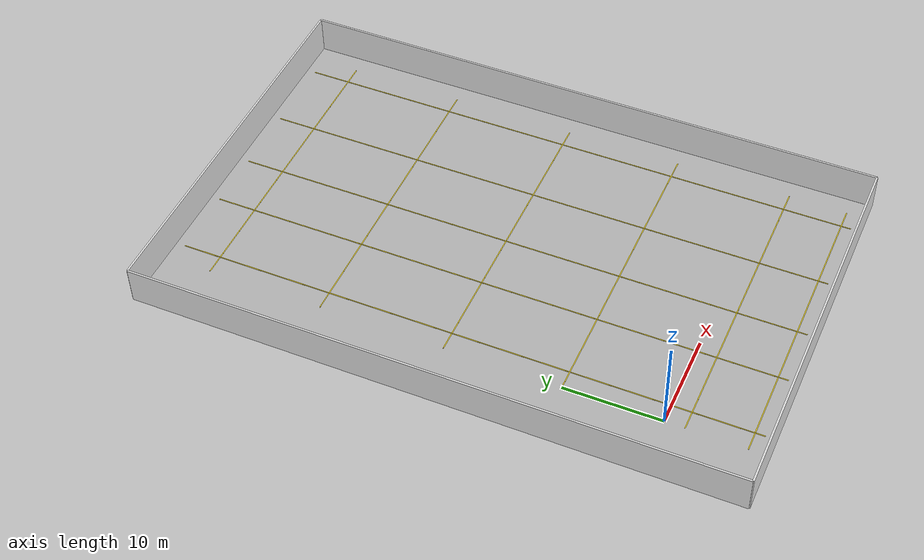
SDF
<sdf version="1.10">
 <world name="warehouse_with_people">
  <plugin name="gz::sim::systems::Physics" filename="gz-sim-physics-system"/>
  <plugin name="gz::sim::systems::UserCommands" filename="gz-sim-user-commands-system"/>
  <plugin name="gz::sim::systems::SceneBroadcaster" filename="gz-sim-scene-broadcaster-system"/>
  <plugin name="gz::sim::systems::Sensors" filename="gz-sim-sensors-system">
   <render_engine>ogre2</render_engine>
  </plugin>
  <gravity>0 0 -9.8000000000000007</gravity>
  <physics name="default_physics" default="false" type="ode">
   <max_step_size>0.001</max_step_size>
   <real_time_factor>1</real_time_factor>
   <real_time_update_rate>1000</real_time_update_rate>
  </physics>
  <magnetic_field>6.0000000000000002e-06 2.3e-05 -4.1999999999999998e-05</magnetic_field>
  <atmosphere type="adiabatic"/>
  <scene>
   <ambient>0.550000012 0.550000012 0.550000012 1</ambient>
   <background>0.850000024 0.850000024 0.850000024 1</background>
   <shadows>false</shadows>
  </scene>
  <audio><device>default</device></audio>
  <spherical_coordinates>
   <surface_model>EARTH_WGS84</surface_model>
   <latitude_deg>0</latitude_deg>
   <longitude_deg>0</longitude_deg>
   <elevation>0</elevation>
   <heading_deg>0</heading_deg>
  </spherical_coordinates>
  <model name="depot_support_floor">
   <static>true</static>
   <pose>6 -11 -0.05 0 0 0</pose>
   <link name="link">
    <collision name="collision">
     <geometry><box><size>8 6 0.1</size></box></geometry>
     <surface><friction><ode><mu>1</mu><mu2>1</mu2></ode></friction></surface>
    </collision>
   </link>
  </model>
  <model name="plain_floor">
   <static>true</static>
   <pose>14 21 -0.050000000000000003 0 0 0</pose>
   <link name="link">
    <collision name="collision">
     <geometry><box><size>40 62 0.10000000000000001</size></box></geometry>
     <surface><friction><ode><mu>1</mu><mu2>1</mu2></ode></friction></surface>
    </collision>
    <visual name="visual">
     <geometry><box><size>40 62 0.10000000000000001</size></box></geometry>
     <material>
      <ambient>0.720000029 0.720000029 0.720000029 1</ambient>
      <diffuse>0.720000029 0.720000029 0.720000029 1</diffuse>
      <specular>0.0500000007 0.0500000007 0.0500000007 1</specular>
     </material>
    </visual>
    <inertial>
     <mass>1</mass>
     <inertia><ixx>1</ixx><ixy>0</ixy><ixz>0</ixz><iyy>1</iyy><iyz>0</iyz><izz>1</izz></inertia>
    </inertial>
   </link>
  </model>
  <model name="wall_west">
   <static>true</static>
   <pose>-6 21 2 0 0 0</pose>
   <link name="link">
    <collision name="collision">
     <geometry><box><size>0.20000000000000001 62 4</size></box></geometry>
     <surface><friction><ode><mu>1</mu><mu2>1</mu2></ode></friction></surface>
    </collision>
    <visual name="visual">
     <geometry><box><size>0.20000000000000001 62 4</size></box></geometry>
     <material>
      <ambient>0.879999995 0.879999995 0.879999995 1</ambient>
      <diffuse>0.879999995 0.879999995 0.879999995 1</diffuse>
      <specular>0.0500000007 0.0500000007 0.0500000007 1</specular>
     </material>
    </visual>
    <inertial>
     <mass>1</mass>
     <inertia><ixx>1</ixx><ixy>0</ixy><ixz>0</ixz><iyy>1</iyy><iyz>0</iyz><izz>1</izz></inertia>
    </inertial>
   </link>
  </model>
  <model name="wall_east">
   <static>true</static>
   <pose>34 21 2 0 0 0</pose>
   <link name="link">
    <collision name="collision">
     <geometry><box><size>0.20000000000000001 62 4</size></box></geometry>
     <surface><friction><ode><mu>1</mu><mu2>1</mu2></ode></friction></surface>
    </collision>
    <visual name="visual">
     <geometry><box><size>0.20000000000000001 62 4</size></box></geometry>
     <material>
      <ambient>0.879999995 0.879999995 0.879999995 1</ambient>
      <diffuse>0.879999995 0.879999995 0.879999995 1</diffuse>
      <specular>0.0500000007 0.0500000007 0.0500000007 1</specular>
     </material>
    </visual>
    <inertial>
     <mass>1</mass>
     <inertia><ixx>1</ixx><ixy>0</ixy><ixz>0</ixz><iyy>1</iyy><iyz>0</iyz><izz>1</izz></inertia>
    </inertial>
   </link>
  </model>
  <model name="wall_south">
   <static>true</static>
   <pose>14 -10 2 0 0 0</pose>
   <link name="link">
    <collision name="collision">
     <geometry><box><size>40 0.20000000000000001 4</size></box></geometry>
     <surface><friction><ode><mu>1</mu><mu2>1</mu2></ode></friction></surface>
    </collision>
    <visual name="visual">
     <geometry><box><size>40 0.20000000000000001 4</size></box></geometry>
     <material>
      <ambient>0.879999995 0.879999995 0.879999995 1</ambient>
      <diffuse>0.879999995 0.879999995 0.879999995 1</diffuse>
      <specular>0.0500000007 0.0500000007 0.0500000007 1</specular>
     </material>
    </visual>
    <inertial>
     <mass>1</mass>
     <inertia><ixx>1</ixx><ixy>0</ixy><ixz>0</ixz><iyy>1</iyy><iyz>0</iyz><izz>1</izz></inertia>
    </inertial>
   </link>
  </model>
  <model name="wall_north">
   <static>true</static>
   <pose>14 52 2 0 0 0</pose>
   <link name="link">
    <collision name="collision">
     <geometry><box><size>40 0.20000000000000001 4</size></box></geometry>
     <surface><friction><ode><mu>1</mu><mu2>1</mu2></ode></friction></surface>
    </collision>
    <visual name="visual">
     <geometry><box><size>40 0.20000000000000001 4</size></box></geometry>
     <material>
      <ambient>0.879999995 0.879999995 0.879999995 1</ambient>
      <diffuse>0.879999995 0.879999995 0.879999995 1</diffuse>
      <specular>0.0500000007 0.0500000007 0.0500000007 1</specular>
     </material>
    </visual>
    <inertial>
     <mass>1</mass>
     <inertia><ixx>1</ixx><ixy>0</ixy><ixz>0</ixz><iyy>1</iyy><iyz>0</iyz><izz>1</izz></inertia>
    </inertial>
   </link>
  </model>
  <model name="line_aisle_A">
   <static>true</static>
   <pose>2 21 0.0050000000000000001 0 0 0</pose>
   <link name="link">
    <visual name="vis">
     <geometry><box><size>0.10000000000000001 60 0.002</size></box></geometry>
     <material>
      <ambient>0.949999988 0.850000024 0.150000006 1</ambient>
      <diffuse>0.949999988 0.850000024 0.150000006 1</diffuse>
     </material>
    </visual>
    <inertial>
     <mass>1</mass>
     <inertia><ixx>1</ixx><ixy>0</ixy><ixz>0</ixz><iyy>1</iyy><iyz>0</iyz><izz>1</izz></inertia>
    </inertial>
   </link>
  </model>
  <model name="line_aisle_B">
   <static>true</static>
   <pose>9 21 0.0050000000000000001 0 0 0</pose>
   <link name="link">
    <visual name="vis">
     <geometry><box><size>0.10000000000000001 60 0.002</size></box></geometry>
     <material>
      <ambient>0.949999988 0.850000024 0.150000006 1</ambient>
      <diffuse>0.949999988 0.850000024 0.150000006 1</diffuse>
     </material>
    </visual>
    <inertial>
     <mass>1</mass>
     <inertia><ixx>1</ixx><ixy>0</ixy><ixz>0</ixz><iyy>1</iyy><iyz>0</iyz><izz>1</izz></inertia>
    </inertial>
   </link>
  </model>
  <model name="line_aisle_C">
   <static>true</static>
   <pose>15 21 0.0050000000000000001 0 0 0</pose>
   <link name="link">
    <visual name="vis">
     <geometry><box><size>0.10000000000000001 60 0.002</size></box></geometry>
     <material>
      <ambient>0.949999988 0.850000024 0.150000006 1</ambient>
      <diffuse>0.949999988 0.850000024 0.150000006 1</diffuse>
     </material>
    </visual>
    <inertial>
     <mass>1</mass>
     <inertia><ixx>1</ixx><ixy>0</ixy><ixz>0</ixz><iyy>1</iyy><iyz>0</iyz><izz>1</izz></inertia>
    </inertial>
   </link>
  </model>
  <model name="line_aisle_D">
   <static>true</static>
   <pose>22 21 0.0050000000000000001 0 0 0</pose>
   <link name="link">
    <visual name="vis">
     <geometry><box><size>0.10000000000000001 60 0.002</size></box></geometry>
     <material>
      <ambient>0.949999988 0.850000024 0.150000006 1</ambient>
      <diffuse>0.949999988 0.850000024 0.150000006 1</diffuse>
     </material>
    </visual>
    <inertial>
     <mass>1</mass>
     <inertia><ixx>1</ixx><ixy>0</ixy><ixz>0</ixz><iyy>1</iyy><iyz>0</iyz><izz>1</izz></inertia>
    </inertial>
   </link>
  </model>
  <model name="line_aisle_E">
   <static>true</static>
   <pose>30 21 0.0050000000000000001 0 0 0</pose>
   <link name="link">
    <visual name="vis">
     <geometry><box><size>0.10000000000000001 60 0.002</size></box></geometry>
     <material>
      <ambient>0.949999988 0.850000024 0.150000006 1</ambient>
      <diffuse>0.949999988 0.850000024 0.150000006 1</diffuse>
     </material>
    </visual>
    <inertial>
     <mass>1</mass>
     <inertia><ixx>1</ixx><ixy>0</ixy><ixz>0</ixz><iyy>1</iyy><iyz>0</iyz><izz>1</izz></inertia>
    </inertial>
   </link>
  </model>
  <model name="line_cross_south">
   <static>true</static>
   <pose>16 -8 0.0050000000000000001 0 0 0</pose>
   <link name="link">
    <visual name="vis">
     <geometry><box><size>32 0.10000000000000001 0.002</size></box></geometry>
     <material>
      <ambient>0.949999988 0.850000024 0.150000006 1</ambient>
      <diffuse>0.949999988 0.850000024 0.150000006 1</diffuse>
     </material>
    </visual>
    <inertial>
     <mass>1</mass>
     <inertia><ixx>1</ixx><ixy>0</ixy><ixz>0</ixz><iyy>1</iyy><iyz>0</iyz><izz>1</izz></inertia>
    </inertial>
   </link>
  </model>
  <model name="line_cross_row1">
   <static>true</static>
   <pose>16 -2 0.0050000000000000001 0 0 0</pose>
   <link name="link">
    <visual name="vis">
     <geometry><box><size>32 0.10000000000000001 0.002</size></box></geometry>
     <material>
      <ambient>0.949999988 0.850000024 0.150000006 1</ambient>
      <diffuse>0.949999988 0.850000024 0.150000006 1</diffuse>
     </material>
    </visual>
    <inertial>
     <mass>1</mass>
     <inertia><ixx>1</ixx><ixy>0</ixy><ixz>0</ixz><iyy>1</iyy><iyz>0</iyz><izz>1</izz></inertia>
    </inertial>
   </link>
  </model>
  <model name="line_cross_row2">
   <static>true</static>
   <pose>16 10 0.0050000000000000001 0 0 0</pose>
   <link name="link">
    <visual name="vis">
     <geometry><box><size>32 0.10000000000000001 0.002</size></box></geometry>
     <material>
      <ambient>0.949999988 0.850000024 0.150000006 1</ambient>
      <diffuse>0.949999988 0.850000024 0.150000006 1</diffuse>
     </material>
    </visual>
    <inertial>
     <mass>1</mass>
     <inertia><ixx>1</ixx><ixy>0</ixy><ixz>0</ixz><iyy>1</iyy><iyz>0</iyz><izz>1</izz></inertia>
    </inertial>
   </link>
  </model>
  <model name="line_cross_row3">
   <static>true</static>
   <pose>16 22 0.0050000000000000001 0 0 0</pose>
   <link name="link">
    <visual name="vis">
     <geometry><box><size>32 0.10000000000000001 0.002</size></box></geometry>
     <material>
      <ambient>0.949999988 0.850000024 0.150000006 1</ambient>
      <diffuse>0.949999988 0.850000024 0.150000006 1</diffuse>
     </material>
    </visual>
    <inertial>
     <mass>1</mass>
     <inertia><ixx>1</ixx><ixy>0</ixy><ixz>0</ixz><iyy>1</iyy><iyz>0</iyz><izz>1</izz></inertia>
    </inertial>
   </link>
  </model>
  <model name="line_cross_row4">
   <static>true</static>
   <pose>16 35 0.0050000000000000001 0 0 0</pose>
   <link name="link">
    <visual name="vis">
     <geometry><box><size>32 0.10000000000000001 0.002</size></box></geometry>
     <material>
      <ambient>0.949999988 0.850000024 0.150000006 1</ambient>
      <diffuse>0.949999988 0.850000024 0.150000006 1</diffuse>
     </material>
    </visual>
    <inertial>
     <mass>1</mass>
     <inertia><ixx>1</ixx><ixy>0</ixy><ixz>0</ixz><iyy>1</iyy><iyz>0</iyz><izz>1</izz></inertia>
    </inertial>
   </link>
  </model>
  <model name="line_cross_row5">
   <static>true</static>
   <pose>16 47 0.0050000000000000001 0 0 0</pose>
   <link name="link">
    <visual name="vis">
     <geometry><box><size>32 0.10000000000000001 0.002</size></box></geometry>
     <material>
      <ambient>0.949999988 0.850000024 0.150000006 1</ambient>
      <diffuse>0.949999988 0.850000024 0.150000006 1</diffuse>
     </material>
    </visual>
    <inertial>
     <mass>1</mass>
     <inertia><ixx>1</ixx><ixy>0</ixy><ixz>0</ixz><iyy>1</iyy><iyz>0</iyz><izz>1</izz></inertia>
    </inertial>
   </link>
  </model>
  <light name="Warehouse_CeilingLight_003" type="point">
   <pose>14 21 10 0 0 0</pose>
   <cast_shadows>false</cast_shadows>
   <intensity>1</intensity>
   <direction>0 0 -1</direction>
   <diffuse>0.699999988 0.699999988 0.699999988 1</diffuse>
   <specular>0.200000003 0.200000003 0.200000003 1</specular>
   <attenuation>
    <range>80</range>
    <linear>0.01</linear>
    <constant>0.29999999999999999</constant>
    <quadratic>0.001</quadratic>
   </attenuation>
   <spot><inner_angle>0</inner_angle><outer_angle>0</outer_angle><falloff>0</falloff></spot>
  </light>
 </world>
</sdf>
